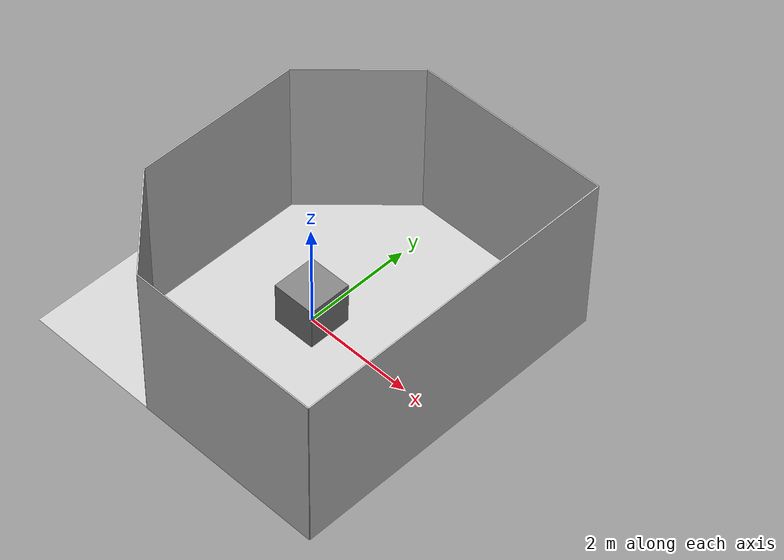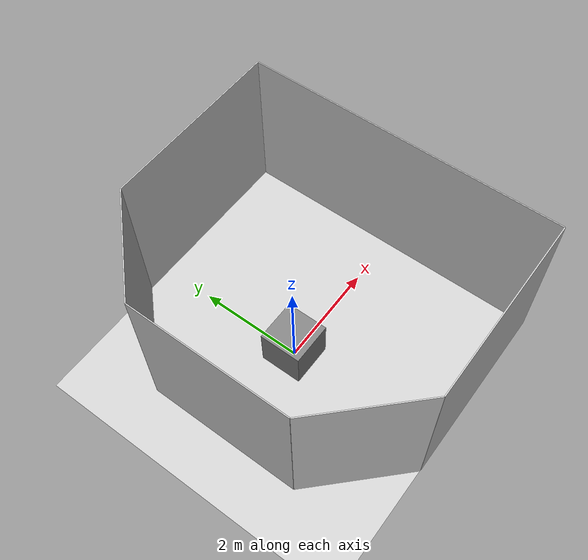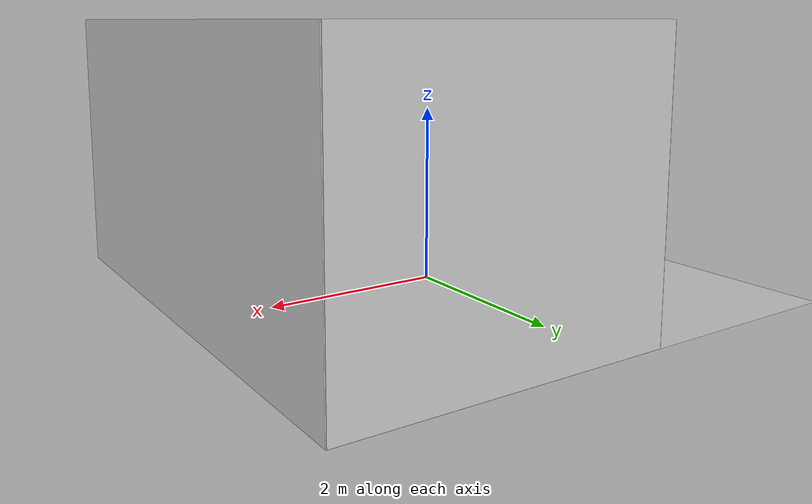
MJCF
<mujoco model="table_arena">
  <asset>
    <texture builtin="gradient" height="256" rgb1=".9 .9 1." rgb2=".2 .3 .4" type="skybox" width="256"/>
    <texture file="../textures/light-gray-floor-tile.png" type="2d" name="texplane"/>
    <material name="floorplane" reflectance="0.01" shininess="0.0" specular="0.0" texrepeat="2 2" texture="texplane" texuniform="true"/>
    <!-- ceramic table texture and material-->
    <texture file="../textures/ceramic.png" type="cube" name="tex-ceramic"/>
    <material name="table_ceramic" reflectance="0.0" shininess="0.0" specular="0.2" texrepeat="1 1" texture="tex-ceramic" />
    <!-- steel legs -->
    <texture file="../textures/steel-brushed.png" type="cube" name="tex-steel-brushed"/>
    <material name="table_legs_metal" reflectance="0.8" shininess="0.8" texrepeat="1 1" texture="tex-steel-brushed" />
    <!-- plaster walls -->
    <texture file="../textures/light-gray-plaster.png" type="2d" name="tex-light-gray-plaster"/>
    <material name="walls_mat" reflectance="0.0" shininess="0.1" specular="0.1" texrepeat="3 3" texture="tex-light-gray-plaster" texuniform="true" />
    <!-- added table texture and material for domain randomization -->
    <texture  name="textable" builtin="flat" height="512" width="512" rgb1="0.5 0.5 0.5" rgb2="0.5 0.5 0.5"/>
    <material name="table_mat" texture="textable" />

  </asset>
  <worldbody>
    <!-- Floor -->
    <geom condim="3" group="1" material="floorplane" name="floor" pos="0 0 0" size="3 3 .125" type="plane"/>
    <!-- Walls (visual only) -->
    <geom pos="-1.25 2.25 1.5" quat="0.6532815 0.6532815 0.2705981 0.2705981" size="1.06 1.5 0.01" type="box" conaffinity="0" contype="0" group="1" name="wall_leftcorner_visual" material="walls_mat"/>
    <geom pos="-1.25 -2.25 1.5" quat="0.6532815 0.6532815 -0.2705981 -0.2705981" size="1.06 1.5 0.01" type="box" conaffinity="0" contype="0" group="1" name="wall_rightcorner_visual" material="walls_mat"/>
    <geom pos="1.25 3 1.5" quat="0.7071 0.7071 0 0" size="1.75 1.5 0.01" type="box" conaffinity="0" contype="0" group="1" name="wall_left_visual" material="walls_mat"/>
    <geom pos="1.25 -3 1.5" quat="0.7071 -0.7071 0 0" size="1.75 1.5 0.01" type="box" conaffinity="0" contype="0" group="1" name="wall_right_visual" material="walls_mat"/>
    <geom pos="-2 0 1.5" quat="0.5 0.5 0.5 0.5" size="1.5 1.5 0.01" type="box" conaffinity="0" contype="0" group="1" name="wall_rear_visual" material="walls_mat"/>
    <geom pos="3 0 1.5" quat="0.5 0.5 -0.5 -0.5" size="3 1.5 0.01" type="box" conaffinity="0" contype="0" group="1" name="wall_front_visual" material="walls_mat"/>
    <!-- Table body -->
    <body name="table" pos="0 0 0.4" axisangle="1 1 1 0">

      <geom pos="0 0 0" size="0.4 0.4 0.4" type="box" group="0" name="table_collision_0" friction="1 0.005 0.0001"/>
      <geom pos="0 0 0" size="0.4 0.4 0.4" type="box" conaffinity="0" contype="0" group="1" name="table_visual_0" material="table_ceramic" rgba="0.5 0 0 1"/>

      <geom pos="0 0 0" size="0.4 0.4 0.4" type="box" group="0" name="table_collision_1" friction="1 0.005 0.0001"/>
      <geom pos="0 0 0" size="0.4 0.4 0.4" type="box" conaffinity="0" contype="0" group="1" name="table_visual_1" material="table_ceramic" rgba="1 0 0 1"/>

      <geom pos="0 0 0" size="0.4 0.4 0.4" type="box" group="0" name="table_collision_2" friction="1 0.005 0.0001"/>
      <geom pos="0 0 0" size="0.4 0.4 0.4" type="box" conaffinity="0" contype="0" group="1" name="table_visual_2" material="table_ceramic" rgba="0 0.5 0 1"/>

      <geom pos="0 0 0" size="0.4 0.4 0.4" type="box" group="0" name="table_collision_3" friction="1 0.005 0.0001"/>
      <geom pos="0 0 0" size="0.4 0.4 0.4" type="box" conaffinity="0" contype="0" group="1" name="table_visual_3" material="table_ceramic" rgba="0 1 0 1"/>

      <geom pos="0 0 0" size="0.4 0.4 0.4" type="box" group="0" name="table_collision_4" friction="1 0.005 0.0001"/>
      <geom pos="0 0 0" size="0.4 0.4 0.4" type="box" conaffinity="0" contype="0" group="1" name="table_visual_4" material="table_ceramic" rgba="0 0 0.5 1"/>

      <geom pos="0 0 0" size="0.4 0.4 0.4" type="box" group="0" name="table_collision_5" friction="1 0.005 0.0001"/>
      <geom pos="0 0 0" size="0.4 0.4 0.4" type="box" conaffinity="0" contype="0" group="1" name="table_visual_5" material="table_ceramic" rgba="0 0 0.5 1"/>

      <geom pos="0 0 0" size="0.4 0.4 0.4" type="box" group="0" name="table_collision_6" friction="1 0.005 0.0001"/>
      <geom pos="0 0 0" size="0.4 0.4 0.4" type="box" conaffinity="0" contype="0" group="1" name="table_visual_6" material="table_ceramic" rgba="0 0 0.5 1"/>

      <geom pos="0 0 0" size="0.4 0.4 0.4" type="box" group="0" name="table_collision_7" friction="1 0.005 0.0001"/>
      <geom pos="0 0 0" size="0.4 0.4 0.4" type="box" conaffinity="0" contype="0" group="1" name="table_visual_7" material="table_ceramic" rgba="0 0 0.5 1"/>

      <site pos="0 0 0.4" name="table_top" size="0.001 0.001 0.001" rgba="0 0 0 0"/>
      <!-- Legs (visual only) -->
      <geom pos="0 0 0" size="0.05 0.1" type="cylinder" conaffinity="0" contype="0" group="1" name="table_leg1_visual" material="table_legs_metal" rgba="0 0 0.5 0"/>
      <geom pos="0 0 0" size="0.05 0.1" type="cylinder" conaffinity="0" contype="0" group="1" name="table_leg2_visual" material="table_legs_metal" rgba="0 0 0.5 0"/>
      <geom pos="0 0 0" size="0.05 0.1" type="cylinder" conaffinity="0" contype="0" group="1" name="table_leg3_visual" material="table_legs_metal" rgba="0 0 0.5 0"/>
      <geom pos="0 0 0" size="0.05 0.1" type="cylinder" conaffinity="0" contype="0" group="1" name="table_leg4_visual" material="table_legs_metal" rgba="0 0 0.5 0"/>
    </body>
    <light pos="1.0 1.0 1.5" dir="-0.2 -0.2 -1" specular="0.3 0.3 0.3" directional="true" castshadow="false"/>
    <!-- front view -->
    <camera mode="fixed" name="frontview" pos="1.6 0 1.45" quat="0.56 0.43 0.43 0.56"/>
    <!-- bird view -->
    <camera mode="fixed" name="birdview" pos="-0.2 0 3.0" quat="0.7071 0 0 0.7071"/>
    <!-- agent view -->
    <camera mode="fixed" name="agentview" pos="0.5 0 1.35" quat="0.653 0.271 0.271 0.653"/>
    <!-- side view -->
    <camera mode="fixed" name="sideview" pos="-0.05651774593317116 1.2761224129427358 1.4879572214102434" quat="0.009905065491771751 0.006877963156909582 0.5912228352893879 0.806418094001364" />
  </worldbody>
</mujoco>
